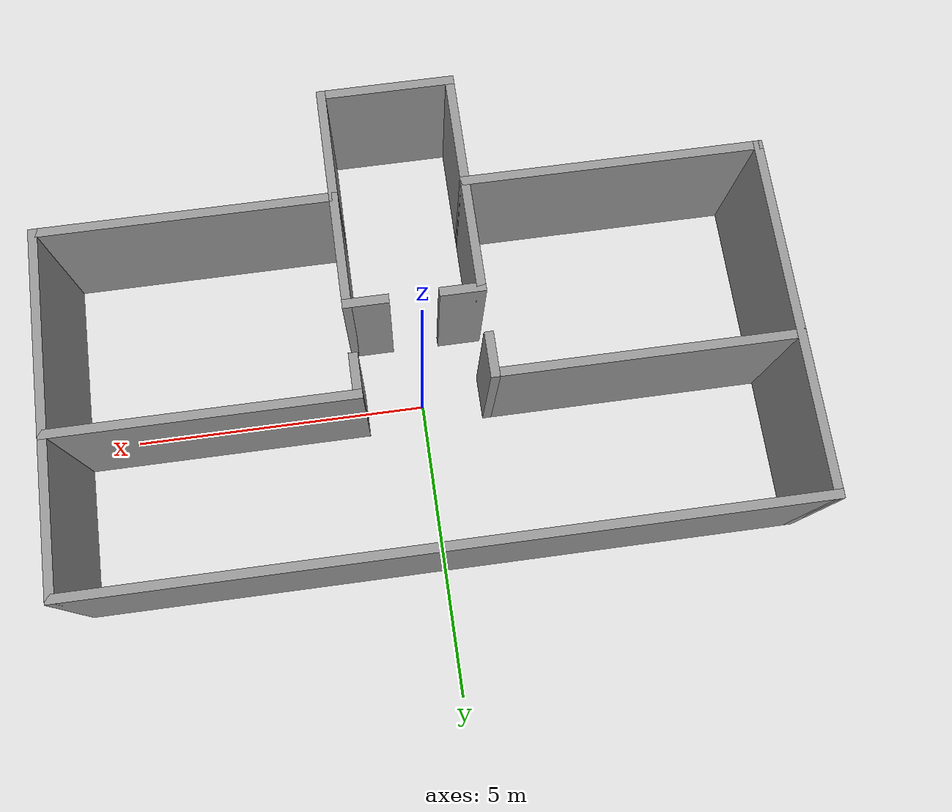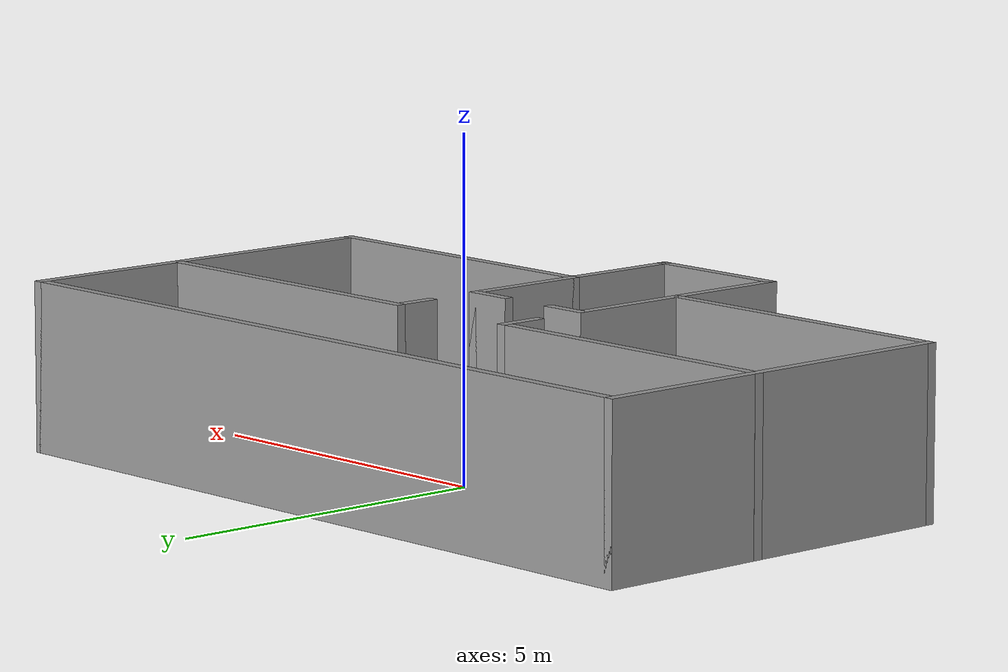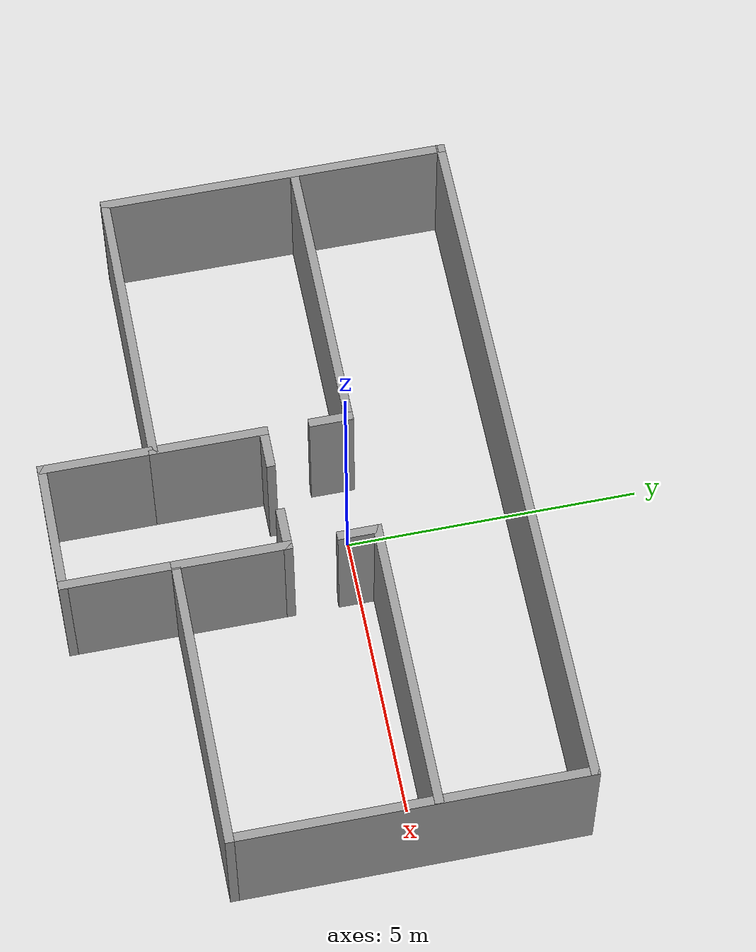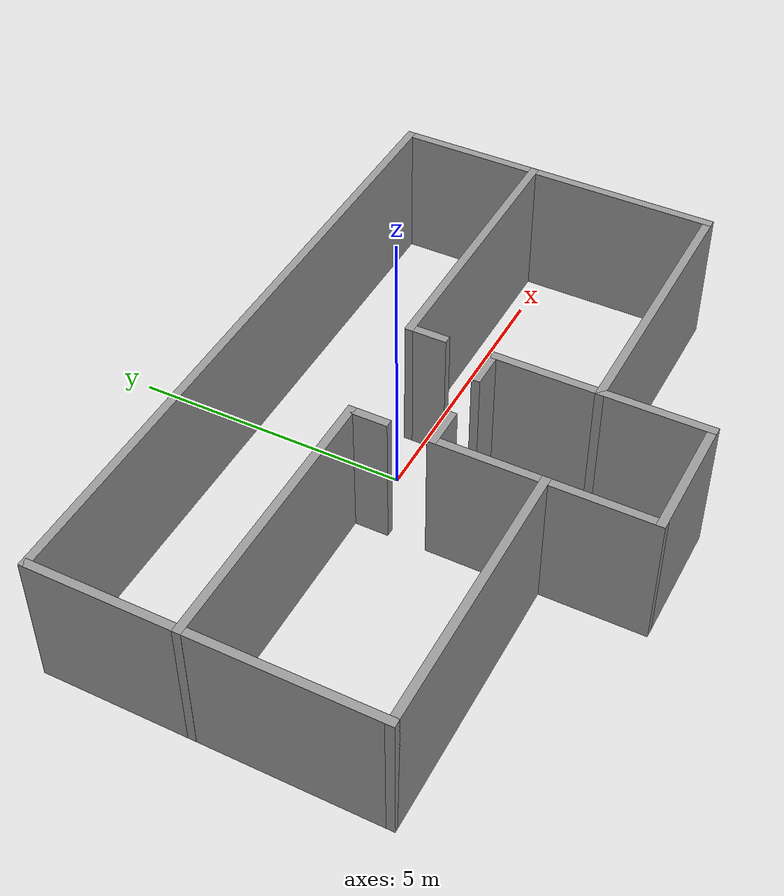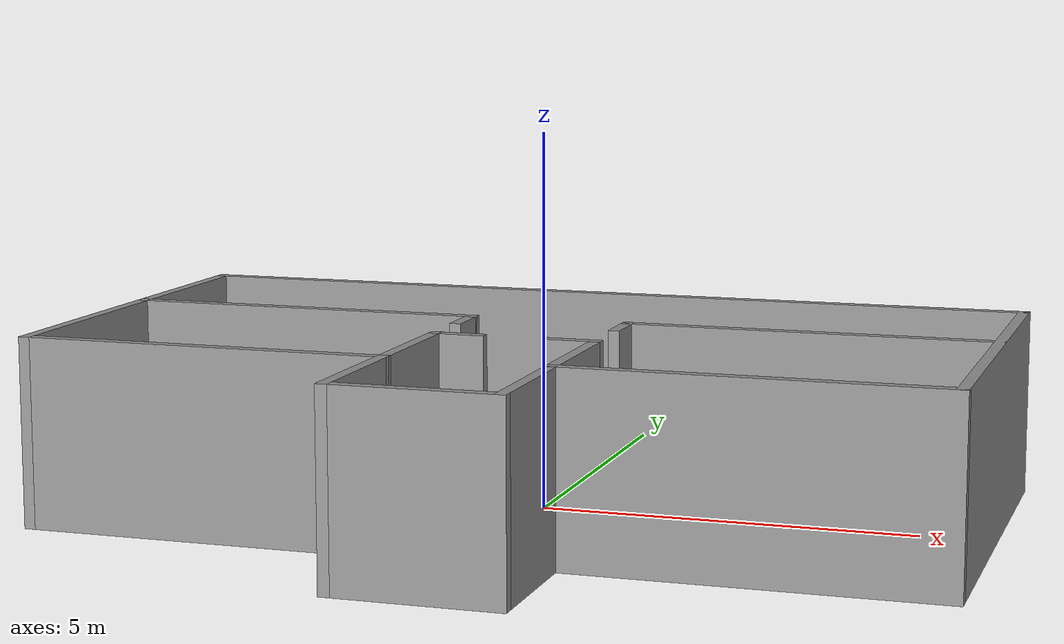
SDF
<?xml version='1.0'?>
<sdf version='1.7'>
  <model name='Map'>
    <pose>-0.017718 -1.0376 0 0 -0 0</pose>
    <link name='Wall_29'>
      <collision name='Wall_29_Collision'>
        <geometry>
          <box>
            <size>5 0.15 2.5</size>
          </box>
        </geometry>
        <pose>0 0 1.25 0 -0 0</pose>
      </collision>
      <visual name='Wall_29_Visual'>
        <pose>0 0 1.25 0 -0 0</pose>
        <geometry>
          <box>
            <size>5 0.15 2.5</size>
          </box>
        </geometry>
        <material>
          <script>
            <uri>file://media/materials/scripts/gazebo.material</uri>
            <name>Gazebo/Grey</name>
          </script>
          <ambient>1 1 1 1</ambient>
        </material>
        <meta>
          <layer>0</layer>
        </meta>
      </visual>
      <pose>-3.49944 -2 0 0 -0 0</pose>
    </link>
    <link name='Wall_31'>
      <collision name='Wall_31_Collision'>
        <geometry>
          <box>
            <size>5 0.15 2.5</size>
          </box>
        </geometry>
        <pose>0 0 1.25 0 -0 0</pose>
      </collision>
      <visual name='Wall_31_Visual'>
        <pose>0 0 1.25 0 -0 0</pose>
        <geometry>
          <box>
            <size>5 0.15 2.5</size>
          </box>
        </geometry>
        <material>
          <script>
            <uri>file://media/materials/scripts/gazebo.material</uri>
            <name>Gazebo/Grey</name>
          </script>
          <ambient>1 1 1 1</ambient>
        </material>
        <meta>
          <layer>0</layer>
        </meta>
      </visual>
      <pose>3.50056 -2 0 0 -0 3.14159</pose>
    </link>
    <link name='Wall_57'>
      <collision name='Wall_57_Collision'>
        <geometry>
          <box>
            <size>2 0.15 2.5</size>
          </box>
        </geometry>
        <pose>0 0 1.25 0 -0 0</pose>
      </collision>
      <visual name='Wall_57_Visual'>
        <pose>0 0 1.25 0 -0 0</pose>
        <geometry>
          <box>
            <size>2 0.15 2.5</size>
          </box>
        </geometry>
        <material>
          <script>
            <uri>file://media/materials/scripts/gazebo.material</uri>
            <name>Gazebo/Grey</name>
          </script>
          <ambient>1 1 1 1</ambient>
        </material>
        <meta>
          <layer>0</layer>
        </meta>
      </visual>
      <pose>-1.07444 -1.075 0 0 -0 1.5708</pose>
    </link>
    <link name='Wall_59'>
      <collision name='Wall_59_Collision'>
        <geometry>
          <box>
            <size>2 0.15 2.5</size>
          </box>
        </geometry>
        <pose>0 0 1.25 0 -0 0</pose>
      </collision>
      <visual name='Wall_59_Visual'>
        <pose>0 0 1.25 0 -0 0</pose>
        <geometry>
          <box>
            <size>2 0.15 2.5</size>
          </box>
        </geometry>
        <material>
          <script>
            <uri>file://media/materials/scripts/gazebo.material</uri>
            <name>Gazebo/Grey</name>
          </script>
          <ambient>1 1 1 1</ambient>
        </material>
        <meta>
          <layer>0</layer>
        </meta>
      </visual>
      <pose>1.07556 -1.075 0 0 -0 1.5708</pose>
    </link>
    <link name='Wall_62'>
      <collision name='Wall_62_Collision'>
        <geometry>
          <box>
            <size>2 0.15 2.5</size>
          </box>
        </geometry>
        <pose>0 0 1.25 0 -0 0</pose>
      </collision>
      <visual name='Wall_62_Visual'>
        <pose>0 0 1.25 0 -0 0</pose>
        <geometry>
          <box>
            <size>2 0.15 2.5</size>
          </box>
        </geometry>
        <material>
          <script>
            <uri>file://media/materials/scripts/gazebo.material</uri>
            <name>Gazebo/Grey</name>
          </script>
          <ambient>1 1 1 1</ambient>
        </material>
        <meta>
          <layer>0</layer>
        </meta>
      </visual>
      <pose>-1.07444 -2.925 0 0 -0 -1.5708</pose>
    </link>
    <link name='Wall_64'>
      <collision name='Wall_64_Collision'>
        <geometry>
          <box>
            <size>2 0.15 2.5</size>
          </box>
        </geometry>
        <pose>0 0 1.25 0 -0 0</pose>
      </collision>
      <visual name='Wall_64_Visual'>
        <pose>0 0 1.25 0 -0 0</pose>
        <geometry>
          <box>
            <size>2 0.15 2.5</size>
          </box>
        </geometry>
        <material>
          <script>
            <uri>file://media/materials/scripts/gazebo.material</uri>
            <name>Gazebo/Grey</name>
          </script>
          <ambient>1 1 1 1</ambient>
        </material>
        <meta>
          <layer>0</layer>
        </meta>
      </visual>
      <pose>1.07556 -2.925 0 0 -0 -1.5708</pose>
    </link>
    <link name='Wall_65'>
      <collision name='Wall_65_Collision'>
        <geometry>
          <box>
            <size>2.3 0.15 2.5</size>
          </box>
        </geometry>
        <pose>0 0 1.25 0 -0 0</pose>
      </collision>
      <visual name='Wall_65_Visual'>
        <pose>0 0 1.25 0 -0 0</pose>
        <geometry>
          <box>
            <size>2.3 0.15 2.5</size>
          </box>
        </geometry>
        <material>
          <script>
            <uri>file://media/materials/scripts/gazebo.material</uri>
            <name>Gazebo/Grey</name>
          </script>
          <ambient>1 1 1 1</ambient>
        </material>
        <meta>
          <layer>0</layer>
        </meta>
      </visual>
      <pose>0.000562 -3.85 0 0 -0 3.14159</pose>
    </link>
    <link name='Wall_7'>
      <collision name='Wall_7_Collision'>
        <geometry>
          <box>
            <size>6 0.15 2.5</size>
          </box>
        </geometry>
        <pose>0 0 1.25 0 -0 0</pose>
      </collision>
      <visual name='Wall_7_Visual'>
        <pose>0 0 1.25 0 -0 0</pose>
        <geometry>
          <box>
            <size>6 0.15 2.5</size>
          </box>
        </geometry>
        <material>
          <script>
            <uri>file://media/materials/scripts/gazebo.material</uri>
            <name>Gazebo/Grey</name>
          </script>
          <ambient>1 1 1 1</ambient>
        </material>
        <meta>
          <layer>0</layer>
        </meta>
      </visual>
      <pose>-5.92444 0.925 0 0 -0 1.5708</pose>
    </link>
    <link name='Wall_71'>
      <collision name='Wall_71_Collision'>
        <geometry>
          <box>
            <size>0.75 0.15 2.5</size>
          </box>
        </geometry>
        <pose>0 0 1.25 0 -0 0</pose>
      </collision>
      <visual name='Wall_71_Visual'>
        <pose>0 0 1.25 0 -0 0</pose>
        <geometry>
          <box>
            <size>0.75 0.15 2.5</size>
          </box>
        </geometry>
        <material>
          <script>
            <uri>file://media/materials/scripts/gazebo.material</uri>
            <name>Gazebo/Grey</name>
          </script>
          <ambient>1 1 1 1</ambient>
        </material>
        <meta>
          <layer>0</layer>
        </meta>
      </visual>
      <pose>-0.774438 -0.15 0 0 -0 0</pose>
    </link>
    <link name='Wall_73'>
      <collision name='Wall_73_Collision'>
        <geometry>
          <box>
            <size>0.75 0.15 2.5</size>
          </box>
        </geometry>
        <pose>0 0 1.25 0 -0 0</pose>
      </collision>
      <visual name='Wall_73_Visual'>
        <pose>0 0 1.25 0 -0 0</pose>
        <geometry>
          <box>
            <size>0.75 0.15 2.5</size>
          </box>
        </geometry>
        <material>
          <script>
            <uri>file://media/materials/scripts/gazebo.material</uri>
            <name>Gazebo/Grey</name>
          </script>
          <ambient>1 1 1 1</ambient>
        </material>
        <meta>
          <layer>0</layer>
        </meta>
      </visual>
      <pose>0.775562 -0.15 0 0 -0 3.14159</pose>
    </link>
    <link name='Wall_75'>
      <collision name='Wall_75_Collision'>
        <geometry>
          <box>
            <size>5 0.15 2.5</size>
          </box>
        </geometry>
        <pose>0 0 1.25 0 -0 0</pose>
      </collision>
      <visual name='Wall_75_Visual'>
        <pose>0 0 1.25 0 -0 0</pose>
        <geometry>
          <box>
            <size>5 0.15 2.5</size>
          </box>
        </geometry>
        <material>
          <script>
            <uri>file://media/materials/scripts/gazebo.material</uri>
            <name>Gazebo/Grey</name>
          </script>
          <ambient>1 1 1 1</ambient>
        </material>
        <meta>
          <layer>0</layer>
        </meta>
      </visual>
      <pose>-3.50056 1.27987 0 0 -0 0</pose>
    </link>
    <link name='Wall_76'>
      <collision name='Wall_76_Collision'>
        <geometry>
          <box>
            <size>0.75 0.15 2.5</size>
          </box>
        </geometry>
        <pose>0 0 1.25 0 -0 0</pose>
      </collision>
      <visual name='Wall_76_Visual'>
        <pose>0 0 1.25 0 -0 0</pose>
        <geometry>
          <box>
            <size>0.75 0.15 2.5</size>
          </box>
        </geometry>
        <material>
          <script>
            <uri>file://media/materials/scripts/gazebo.material</uri>
            <name>Gazebo/Grey</name>
          </script>
          <ambient>1 1 1 1</ambient>
        </material>
        <meta>
          <layer>0</layer>
        </meta>
      </visual>
      <pose>-1.07556 0.979872 0 0 -0 -1.5708</pose>
    </link>
    <link name='Wall_78'>
      <collision name='Wall_78_Collision'>
        <geometry>
          <box>
            <size>5 0.15 2.5</size>
          </box>
        </geometry>
        <pose>0 0 1.25 0 -0 0</pose>
      </collision>
      <visual name='Wall_78_Visual'>
        <pose>0 0 1.25 0 -0 0</pose>
        <geometry>
          <box>
            <size>5 0.15 2.5</size>
          </box>
        </geometry>
        <material>
          <script>
            <uri>file://media/materials/scripts/gazebo.material</uri>
            <name>Gazebo/Grey</name>
          </script>
          <ambient>1 1 1 1</ambient>
        </material>
        <meta>
          <layer>0</layer>
        </meta>
      </visual>
      <pose>3.49472 1.34125 0 0 -0 3.14159</pose>
    </link>
    <link name='Wall_79'>
      <collision name='Wall_79_Collision'>
        <geometry>
          <box>
            <size>0.75 0.15 2.5</size>
          </box>
        </geometry>
        <pose>0 0 1.25 0 -0 0</pose>
      </collision>
      <visual name='Wall_79_Visual'>
        <pose>0 0 1.25 0 -0 0</pose>
        <geometry>
          <box>
            <size>0.75 0.15 2.5</size>
          </box>
        </geometry>
        <material>
          <script>
            <uri>file://media/materials/scripts/gazebo.material</uri>
            <name>Gazebo/Grey</name>
          </script>
          <ambient>1 1 1 1</ambient>
        </material>
        <meta>
          <layer>0</layer>
        </meta>
      </visual>
      <pose>1.06972 1.04125 0 0 -0 -1.5708</pose>
    </link>
    <link name='Wall_8'>
      <collision name='Wall_8_Collision'>
        <geometry>
          <box>
            <size>12 0.15 2.5</size>
          </box>
        </geometry>
        <pose>0 0 1.25 0 -0 0</pose>
      </collision>
      <visual name='Wall_8_Visual'>
        <pose>0 0 1.25 0 -0 0</pose>
        <geometry>
          <box>
            <size>12 0.15 2.5</size>
          </box>
        </geometry>
        <material>
          <script>
            <uri>file://media/materials/scripts/gazebo.material</uri>
            <name>Gazebo/Grey</name>
          </script>
          <ambient>1 1 1 1</ambient>
        </material>
        <meta>
          <layer>0</layer>
        </meta>
      </visual>
      <pose>0.000562 3.85 0 0 -0 0</pose>
    </link>
    <link name='Wall_9'>
      <collision name='Wall_9_Collision'>
        <geometry>
          <box>
            <size>6 0.15 2.5</size>
          </box>
        </geometry>
        <pose>0 0 1.25 0 -0 0</pose>
      </collision>
      <visual name='Wall_9_Visual'>
        <pose>0 0 1.25 0 -0 0</pose>
        <geometry>
          <box>
            <size>6 0.15 2.5</size>
          </box>
        </geometry>
        <material>
          <script>
            <uri>file://media/materials/scripts/gazebo.material</uri>
            <name>Gazebo/Grey</name>
          </script>
          <ambient>1 1 1 1</ambient>
        </material>
        <meta>
          <layer>0</layer>
        </meta>
      </visual>
      <pose>5.92556 0.925 0 0 -0 -1.5708</pose>
    </link>
    <static>1</static>
  </model>
</sdf>
